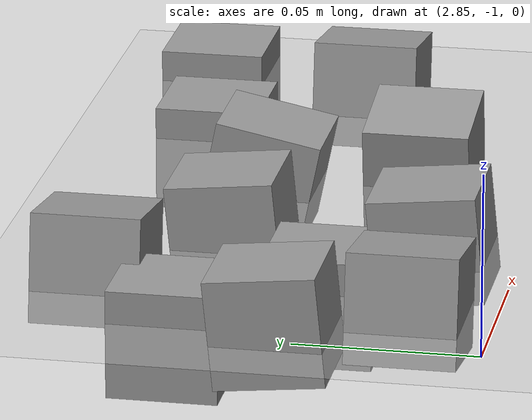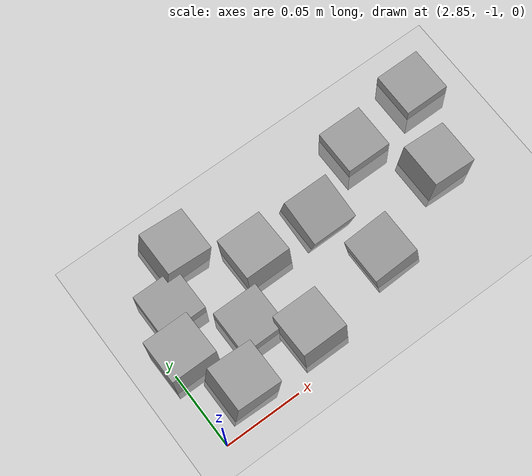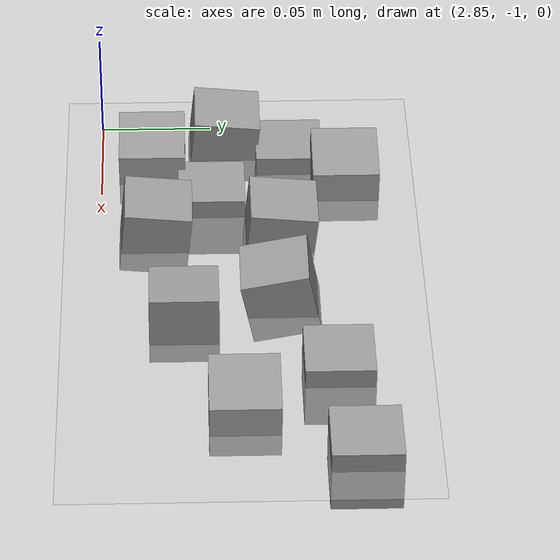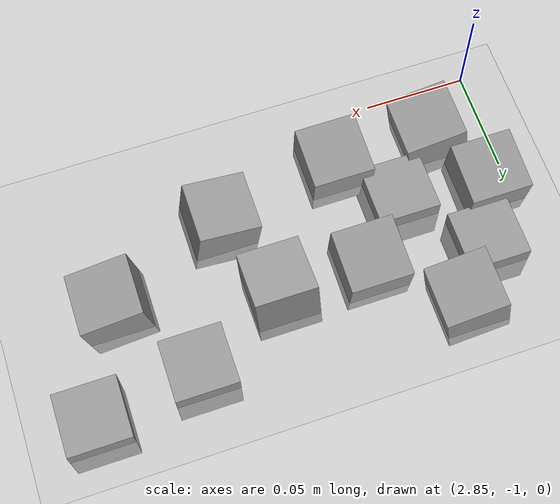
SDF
<sdf version="1.7">
 <world name="default">
  <model name="ground_plane">
   <static>1</static>
   <link name="link">
    <collision name="collision">
     <geometry><plane><normal>0 0 1</normal><size>100 100</size></plane></geometry>
     <surface><friction><ode><mu>100</mu><mu2>50</mu2></ode></friction></surface>
    </collision>
    <visual name="visual">
     <cast_shadows>0</cast_shadows>
     <geometry><plane><normal>0 0 1</normal><size>100 100</size></plane></geometry>
     <material>
      <script><uri>file://media/materials/scripts/gazebo.material</uri><name>Gazebo/Grey</name></script>
     </material>
    </visual>
   </link>
  </model>
  <model name="stone_road_12">
   <link name="link_0_clone_2_clone_0">
    <inertial>
     <mass>1</mass>
     <inertia>
      <ixx>0.166667</ixx>
      <ixy>0</ixy>
      <ixz>0</ixz>
      <iyy>0.166667</iyy>
      <iyz>0</iyz>
      <izz>0.166667</izz>
     </inertia>
    </inertial>
    <pose>0.026852 -0.0813 0.003778 0 0.15 0</pose>
    <kinematic>1</kinematic>
    <visual name="visual">
     <geometry><box><size>0.03 0.03 0.03</size></box></geometry>
     <material>
      <lighting>1</lighting>
      <script><uri>file://media/materials/scripts/gazebo.material</uri><name>Gazebo/Grey</name></script>
      <shader type="pixel"><normal_map>__default__</normal_map></shader>
      <ambient>0.3 0.3 0.3 1</ambient>
      <diffuse>0.7 0.7 0.7 1</diffuse>
      <specular>0.01 0.01 0.01 1</specular>
      <emissive>0 0 0 1</emissive>
     </material>
    </visual>
    <collision name="collision">
     <geometry><box><size>0.03 0.03 0.03</size></box></geometry>
     <surface>
      <friction>
       <ode><mu>1</mu><mu2>1</mu2><fdir1>0 0 0</fdir1><slip1>0</slip1><slip2>0</slip2></ode>
       <torsional>
        <coefficient>1</coefficient>
        <patch_radius>0</patch_radius>
        <surface_radius>0</surface_radius>
        <use_patch_radius>1</use_patch_radius>
        <ode><slip>0</slip></ode>
       </torsional>
      </friction>
      <bounce><restitution_coefficient>0</restitution_coefficient><threshold>1e+06</threshold></bounce>
      <contact>
       <collide_without_contact>0</collide_without_contact>
       <collide_without_contact_bitmask>1</collide_without_contact_bitmask>
       <collide_bitmask>1</collide_bitmask>
       <ode>
        <soft_cfm>0</soft_cfm>
        <soft_erp>0.2</soft_erp>
        <kp>1e+13</kp>
        <kd>1</kd>
        <max_vel>0.01</max_vel>
        <min_depth>0</min_depth>
       </ode>
       <bullet>
        <split_impulse>1</split_impulse>
        <split_impulse_penetration_threshold>-0.01</split_impulse_penetration_threshold>
        <soft_cfm>0</soft_cfm>
        <soft_erp>0.2</soft_erp>
        <kp>1e+13</kp>
        <kd>1</kd>
       </bullet>
      </contact>
     </surface>
    </collision>
   </link>
   <link name="link_0_clone_2_clone_1">
    <inertial>
     <mass>1</mass>
     <inertia>
      <ixx>0.166667</ixx>
      <ixy>0</ixy>
      <ixz>0</ixz>
      <iyy>0.166667</iyy>
      <iyz>0</iyz>
      <izz>0.166667</izz>
     </inertia>
    </inertial>
    <pose>0.041447 0.006316 0.003778 0 0.15 0</pose>
    <kinematic>1</kinematic>
    <visual name="visual">
     <geometry><box><size>0.03 0.03 0.03</size></box></geometry>
     <material>
      <lighting>1</lighting>
      <script><uri>file://media/materials/scripts/gazebo.material</uri><name>Gazebo/Grey</name></script>
      <shader type="pixel"><normal_map>__default__</normal_map></shader>
      <ambient>0.3 0.3 0.3 1</ambient>
      <diffuse>0.7 0.7 0.7 1</diffuse>
      <specular>0.01 0.01 0.01 1</specular>
      <emissive>0 0 0 1</emissive>
     </material>
    </visual>
    <collision name="collision">
     <geometry><box><size>0.03 0.03 0.03</size></box></geometry>
     <surface>
      <friction>
       <ode><mu>1</mu><mu2>1</mu2><fdir1>0 0 0</fdir1><slip1>0</slip1><slip2>0</slip2></ode>
       <torsional>
        <coefficient>1</coefficient>
        <patch_radius>0</patch_radius>
        <surface_radius>0</surface_radius>
        <use_patch_radius>1</use_patch_radius>
        <ode><slip>0</slip></ode>
       </torsional>
      </friction>
      <bounce><restitution_coefficient>0</restitution_coefficient><threshold>1e+06</threshold></bounce>
      <contact>
       <collide_without_contact>0</collide_without_contact>
       <collide_without_contact_bitmask>1</collide_without_contact_bitmask>
       <collide_bitmask>1</collide_bitmask>
       <ode>
        <soft_cfm>0</soft_cfm>
        <soft_erp>0.2</soft_erp>
        <kp>1e+13</kp>
        <kd>1</kd>
        <max_vel>0.01</max_vel>
        <min_depth>0</min_depth>
       </ode>
       <bullet>
        <split_impulse>1</split_impulse>
        <split_impulse_penetration_threshold>-0.01</split_impulse_penetration_threshold>
        <soft_cfm>0</soft_cfm>
        <soft_erp>0.2</soft_erp>
        <kp>1e+13</kp>
        <kd>1</kd>
       </bullet>
      </contact>
     </surface>
    </collision>
   </link>
   <link name="link_0_clone_2_clone_2_clone_13_clone_clone_16_clone_13">
    <inertial>
     <mass>1</mass>
     <inertia>
      <ixx>0.166667</ixx>
      <ixy>0</ixy>
      <ixz>0</ixz>
      <iyy>0.166667</iyy>
      <iyz>0</iyz>
      <izz>0.166667</izz>
     </inertia>
    </inertial>
    <pose>0.168013 -0.00203 -0.006222 0 -0 0</pose>
    <kinematic>1</kinematic>
    <visual name="visual">
     <geometry><box><size>0.03 0.03 0.03</size></box></geometry>
     <material>
      <lighting>1</lighting>
      <script><uri>file://media/materials/scripts/gazebo.material</uri><name>Gazebo/Grey</name></script>
      <shader type="pixel"><normal_map>__default__</normal_map></shader>
      <ambient>0.3 0.3 0.3 1</ambient>
      <diffuse>0.7 0.7 0.7 1</diffuse>
      <specular>0.01 0.01 0.01 1</specular>
      <emissive>0 0 0 1</emissive>
     </material>
    </visual>
    <collision name="collision">
     <geometry><box><size>0.03 0.03 0.03</size></box></geometry>
     <surface>
      <friction>
       <ode><mu>1</mu><mu2>1</mu2><fdir1>0 0 0</fdir1><slip1>0</slip1><slip2>0</slip2></ode>
       <torsional>
        <coefficient>1</coefficient>
        <patch_radius>0</patch_radius>
        <surface_radius>0</surface_radius>
        <use_patch_radius>1</use_patch_radius>
        <ode><slip>0</slip></ode>
       </torsional>
      </friction>
      <bounce><restitution_coefficient>0</restitution_coefficient><threshold>1e+06</threshold></bounce>
      <contact>
       <collide_without_contact>0</collide_without_contact>
       <collide_without_contact_bitmask>1</collide_without_contact_bitmask>
       <collide_bitmask>1</collide_bitmask>
       <ode>
        <soft_cfm>0</soft_cfm>
        <soft_erp>0.2</soft_erp>
        <kp>1e+13</kp>
        <kd>1</kd>
        <max_vel>0.01</max_vel>
        <min_depth>0</min_depth>
       </ode>
       <bullet>
        <split_impulse>1</split_impulse>
        <split_impulse_penetration_threshold>-0.01</split_impulse_penetration_threshold>
        <soft_cfm>0</soft_cfm>
        <soft_erp>0.2</soft_erp>
        <kp>1e+13</kp>
        <kd>1</kd>
       </bullet>
      </contact>
     </surface>
    </collision>
   </link>
   <link name="link_0_clone_2_clone_2_clone_13_clone_clone_16_clone_14">
    <inertial>
     <mass>1</mass>
     <inertia>
      <ixx>0.166667</ixx>
      <ixy>0</ixy>
      <ixz>0</ixz>
      <iyy>0.166667</iyy>
      <iyz>0</iyz>
      <izz>0.166667</izz>
     </inertia>
    </inertial>
    <pose>0.051911 -0.054424 -0.006222 0 -0 0</pose>
    <kinematic>1</kinematic>
    <visual name="visual">
     <geometry><box><size>0.03 0.03 0.03</size></box></geometry>
     <material>
      <lighting>1</lighting>
      <script><uri>file://media/materials/scripts/gazebo.material</uri><name>Gazebo/Grey</name></script>
      <shader type="pixel"><normal_map>__default__</normal_map></shader>
      <ambient>0.3 0.3 0.3 1</ambient>
      <diffuse>0.7 0.7 0.7 1</diffuse>
      <specular>0.01 0.01 0.01 1</specular>
      <emissive>0 0 0 1</emissive>
     </material>
    </visual>
    <collision name="collision">
     <geometry><box><size>0.03 0.03 0.03</size></box></geometry>
     <surface>
      <friction>
       <ode><mu>1</mu><mu2>1</mu2><fdir1>0 0 0</fdir1><slip1>0</slip1><slip2>0</slip2></ode>
       <torsional>
        <coefficient>1</coefficient>
        <patch_radius>0</patch_radius>
        <surface_radius>0</surface_radius>
        <use_patch_radius>1</use_patch_radius>
        <ode><slip>0</slip></ode>
       </torsional>
      </friction>
      <bounce><restitution_coefficient>0</restitution_coefficient><threshold>1e+06</threshold></bounce>
      <contact>
       <collide_without_contact>0</collide_without_contact>
       <collide_without_contact_bitmask>1</collide_without_contact_bitmask>
       <collide_bitmask>1</collide_bitmask>
       <ode>
        <soft_cfm>0</soft_cfm>
        <soft_erp>0.2</soft_erp>
        <kp>1e+13</kp>
        <kd>1</kd>
        <max_vel>0.01</max_vel>
        <min_depth>0</min_depth>
       </ode>
       <bullet>
        <split_impulse>1</split_impulse>
        <split_impulse_penetration_threshold>-0.01</split_impulse_penetration_threshold>
        <soft_cfm>0</soft_cfm>
        <soft_erp>0.2</soft_erp>
        <kp>1e+13</kp>
        <kd>1</kd>
       </bullet>
      </contact>
     </surface>
    </collision>
   </link>
   <link name="link_0_clone_2_clone_2_clone_13_clone_clone_16_clone_19">
    <inertial>
     <mass>1</mass>
     <inertia>
      <ixx>0.166667</ixx>
      <ixy>0</ixy>
      <ixz>0</ixz>
      <iyy>0.166667</iyy>
      <iyz>0</iyz>
      <izz>0.166667</izz>
     </inertia>
    </inertial>
    <pose>0.219442 0.006622 -0.006222 0 -0 0</pose>
    <kinematic>1</kinematic>
    <visual name="visual">
     <geometry><box><size>0.03 0.03 0.03</size></box></geometry>
     <material>
      <lighting>1</lighting>
      <script><uri>file://media/materials/scripts/gazebo.material</uri><name>Gazebo/Grey</name></script>
      <shader type="pixel"><normal_map>__default__</normal_map></shader>
      <ambient>0.3 0.3 0.3 1</ambient>
      <diffuse>0.7 0.7 0.7 1</diffuse>
      <specular>0.01 0.01 0.01 1</specular>
      <emissive>0 0 0 1</emissive>
     </material>
    </visual>
    <collision name="collision">
     <geometry><box><size>0.03 0.03 0.03</size></box></geometry>
     <surface>
      <friction>
       <ode><mu>1</mu><mu2>1</mu2><fdir1>0 0 0</fdir1><slip1>0</slip1><slip2>0</slip2></ode>
       <torsional>
        <coefficient>1</coefficient>
        <patch_radius>0</patch_radius>
        <surface_radius>0</surface_radius>
        <use_patch_radius>1</use_patch_radius>
        <ode><slip>0</slip></ode>
       </torsional>
      </friction>
      <bounce><restitution_coefficient>0</restitution_coefficient><threshold>1e+06</threshold></bounce>
      <contact>
       <collide_without_contact>0</collide_without_contact>
       <collide_without_contact_bitmask>1</collide_without_contact_bitmask>
       <collide_bitmask>1</collide_bitmask>
       <ode>
        <soft_cfm>0</soft_cfm>
        <soft_erp>0.2</soft_erp>
        <kp>1e+13</kp>
        <kd>1</kd>
        <max_vel>0.01</max_vel>
        <min_depth>0</min_depth>
       </ode>
       <bullet>
        <split_impulse>1</split_impulse>
        <split_impulse_penetration_threshold>-0.01</split_impulse_penetration_threshold>
        <soft_cfm>0</soft_cfm>
        <soft_erp>0.2</soft_erp>
        <kp>1e+13</kp>
        <kd>1</kd>
       </bullet>
      </contact>
     </surface>
    </collision>
   </link>
   <link name="link_0_clone_2_clone_2_clone_13_clone_clone_16_clone_6">
    <inertial>
     <mass>1</mass>
     <inertia>
      <ixx>0.166667</ixx>
      <ixy>0</ixy>
      <ixz>0</ixz>
      <iyy>0.166667</iyy>
      <iyz>0</iyz>
      <izz>0.166667</izz>
     </inertia>
    </inertial>
    <pose>0.020774 -0.018727 -0.006222 0 -0 0</pose>
    <kinematic>1</kinematic>
    <visual name="visual">
     <geometry><box><size>0.03 0.03 0.03</size></box></geometry>
     <material>
      <lighting>1</lighting>
      <script><uri>file://media/materials/scripts/gazebo.material</uri><name>Gazebo/Grey</name></script>
      <shader type="pixel"><normal_map>__default__</normal_map></shader>
      <ambient>0.3 0.3 0.3 1</ambient>
      <diffuse>0.7 0.7 0.7 1</diffuse>
      <specular>0.01 0.01 0.01 1</specular>
      <emissive>0 0 0 1</emissive>
     </material>
    </visual>
    <collision name="collision">
     <geometry><box><size>0.03 0.03 0.03</size></box></geometry>
     <surface>
      <friction>
       <ode><mu>1</mu><mu2>1</mu2><fdir1>0 0 0</fdir1><slip1>0</slip1><slip2>0</slip2></ode>
       <torsional>
        <coefficient>1</coefficient>
        <patch_radius>0</patch_radius>
        <surface_radius>0</surface_radius>
        <use_patch_radius>1</use_patch_radius>
        <ode><slip>0</slip></ode>
       </torsional>
      </friction>
      <bounce><restitution_coefficient>0</restitution_coefficient><threshold>1e+06</threshold></bounce>
      <contact>
       <collide_without_contact>0</collide_without_contact>
       <collide_without_contact_bitmask>1</collide_without_contact_bitmask>
       <collide_bitmask>1</collide_bitmask>
       <ode>
        <soft_cfm>0</soft_cfm>
        <soft_erp>0.2</soft_erp>
        <kp>1e+13</kp>
        <kd>1</kd>
        <max_vel>0.01</max_vel>
        <min_depth>0</min_depth>
       </ode>
       <bullet>
        <split_impulse>1</split_impulse>
        <split_impulse_penetration_threshold>-0.01</split_impulse_penetration_threshold>
        <soft_cfm>0</soft_cfm>
        <soft_erp>0.2</soft_erp>
        <kp>1e+13</kp>
        <kd>1</kd>
       </bullet>
      </contact>
     </surface>
    </collision>
   </link>
   <link name="link_0_clone_2_clone_2_clone_13_clone_clone_4">
    <inertial>
     <mass>1</mass>
     <inertia>
      <ixx>0.166667</ixx>
      <ixy>0</ixy>
      <ixz>0</ixz>
      <iyy>0.166667</iyy>
      <iyz>0</iyz>
      <izz>0.166667</izz>
     </inertia>
    </inertial>
    <pose>0.078198 -0.024053 0.003778 -0.1 0 0</pose>
    <kinematic>1</kinematic>
    <visual name="visual">
     <geometry><box><size>0.03 0.03 0.03</size></box></geometry>
     <material>
      <lighting>1</lighting>
      <script><uri>file://media/materials/scripts/gazebo.material</uri><name>Gazebo/Grey</name></script>
      <shader type="pixel"><normal_map>__default__</normal_map></shader>
      <ambient>0.3 0.3 0.3 1</ambient>
      <diffuse>0.7 0.7 0.7 1</diffuse>
      <specular>0.01 0.01 0.01 1</specular>
      <emissive>0 0 0 1</emissive>
     </material>
    </visual>
    <collision name="collision">
     <geometry><box><size>0.03 0.03 0.03</size></box></geometry>
     <surface>
      <friction>
       <ode><mu>1</mu><mu2>1</mu2><fdir1>0 0 0</fdir1><slip1>0</slip1><slip2>0</slip2></ode>
       <torsional>
        <coefficient>1</coefficient>
        <patch_radius>0</patch_radius>
        <surface_radius>0</surface_radius>
        <use_patch_radius>1</use_patch_radius>
        <ode><slip>0</slip></ode>
       </torsional>
      </friction>
      <bounce><restitution_coefficient>0</restitution_coefficient><threshold>1e+06</threshold></bounce>
      <contact>
       <collide_without_contact>0</collide_without_contact>
       <collide_without_contact_bitmask>1</collide_without_contact_bitmask>
       <collide_bitmask>1</collide_bitmask>
       <ode>
        <soft_cfm>0</soft_cfm>
        <soft_erp>0.2</soft_erp>
        <kp>1e+13</kp>
        <kd>1</kd>
        <max_vel>0.01</max_vel>
        <min_depth>0</min_depth>
       </ode>
       <bullet>
        <split_impulse>1</split_impulse>
        <split_impulse_penetration_threshold>-0.01</split_impulse_penetration_threshold>
        <soft_cfm>0</soft_cfm>
        <soft_erp>0.2</soft_erp>
        <kp>1e+13</kp>
        <kd>1</kd>
       </bullet>
      </contact>
     </surface>
    </collision>
   </link>
   <link name="link_0_clone_2_clone_2_clone_13_clone_clone_5">
    <inertial>
     <mass>1</mass>
     <inertia>
      <ixx>0.166667</ixx>
      <ixy>0</ixy>
      <ixz>0</ixz>
      <iyy>0.166667</iyy>
      <iyz>0</iyz>
      <izz>0.166667</izz>
     </inertia>
    </inertial>
    <pose>0.076743 -0.079785 0.003778 -0.1 0 0</pose>
    <kinematic>1</kinematic>
    <visual name="visual">
     <geometry><box><size>0.03 0.03 0.03</size></box></geometry>
     <material>
      <lighting>1</lighting>
      <script><uri>file://media/materials/scripts/gazebo.material</uri><name>Gazebo/Grey</name></script>
      <shader type="pixel"><normal_map>__default__</normal_map></shader>
      <ambient>0.3 0.3 0.3 1</ambient>
      <diffuse>0.7 0.7 0.7 1</diffuse>
      <specular>0.01 0.01 0.01 1</specular>
      <emissive>0 0 0 1</emissive>
     </material>
    </visual>
    <collision name="collision">
     <geometry><box><size>0.03 0.03 0.03</size></box></geometry>
     <surface>
      <friction>
       <ode><mu>1</mu><mu2>1</mu2><fdir1>0 0 0</fdir1><slip1>0</slip1><slip2>0</slip2></ode>
       <torsional>
        <coefficient>1</coefficient>
        <patch_radius>0</patch_radius>
        <surface_radius>0</surface_radius>
        <use_patch_radius>1</use_patch_radius>
        <ode><slip>0</slip></ode>
       </torsional>
      </friction>
      <bounce><restitution_coefficient>0</restitution_coefficient><threshold>1e+06</threshold></bounce>
      <contact>
       <collide_without_contact>0</collide_without_contact>
       <collide_without_contact_bitmask>1</collide_without_contact_bitmask>
       <collide_bitmask>1</collide_bitmask>
       <ode>
        <soft_cfm>0</soft_cfm>
        <soft_erp>0.2</soft_erp>
        <kp>1e+13</kp>
        <kd>1</kd>
        <max_vel>0.01</max_vel>
        <min_depth>0</min_depth>
       </ode>
       <bullet>
        <split_impulse>1</split_impulse>
        <split_impulse_penetration_threshold>-0.01</split_impulse_penetration_threshold>
        <soft_cfm>0</soft_cfm>
        <soft_erp>0.2</soft_erp>
        <kp>1e+13</kp>
        <kd>1</kd>
       </bullet>
      </contact>
     </surface>
    </collision>
   </link>
   <link name="link_0_clone_2_clone_2_clone_13_clone_clone_6">
    <inertial>
     <mass>1</mass>
     <inertia>
      <ixx>0.166667</ixx>
      <ixy>0</ixy>
      <ixz>0</ixz>
      <iyy>0.166667</iyy>
      <iyz>0</iyz>
      <izz>0.166667</izz>
     </inertia>
    </inertial>
    <pose>0.009445 -0.048118 0.003778 -0.1 0 0</pose>
    <kinematic>1</kinematic>
    <visual name="visual">
     <geometry><box><size>0.03 0.03 0.03</size></box></geometry>
     <material>
      <lighting>1</lighting>
      <script><uri>file://media/materials/scripts/gazebo.material</uri><name>Gazebo/Grey</name></script>
      <shader type="pixel"><normal_map>__default__</normal_map></shader>
      <ambient>0.3 0.3 0.3 1</ambient>
      <diffuse>0.7 0.7 0.7 1</diffuse>
      <specular>0.01 0.01 0.01 1</specular>
      <emissive>0 0 0 1</emissive>
     </material>
    </visual>
    <collision name="collision">
     <geometry><box><size>0.03 0.03 0.03</size></box></geometry>
     <surface>
      <friction>
       <ode><mu>1</mu><mu2>1</mu2><fdir1>0 0 0</fdir1><slip1>0</slip1><slip2>0</slip2></ode>
       <torsional>
        <coefficient>1</coefficient>
        <patch_radius>0</patch_radius>
        <surface_radius>0</surface_radius>
        <use_patch_radius>1</use_patch_radius>
        <ode><slip>0</slip></ode>
       </torsional>
      </friction>
      <bounce><restitution_coefficient>0</restitution_coefficient><threshold>1e+06</threshold></bounce>
      <contact>
       <collide_without_contact>0</collide_without_contact>
       <collide_without_contact_bitmask>1</collide_without_contact_bitmask>
       <collide_bitmask>1</collide_bitmask>
       <ode>
        <soft_cfm>0</soft_cfm>
        <soft_erp>0.2</soft_erp>
        <kp>1e+13</kp>
        <kd>1</kd>
        <max_vel>0.01</max_vel>
        <min_depth>0</min_depth>
       </ode>
       <bullet>
        <split_impulse>1</split_impulse>
        <split_impulse_penetration_threshold>-0.01</split_impulse_penetration_threshold>
        <soft_cfm>0</soft_cfm>
        <soft_erp>0.2</soft_erp>
        <kp>1e+13</kp>
        <kd>1</kd>
       </bullet>
      </contact>
     </surface>
    </collision>
   </link>
   <link name="link_0_clone_2_clone_2_clone_5">
    <inertial>
     <mass>1</mass>
     <inertia>
      <ixx>0.166667</ixx>
      <ixy>0</ixy>
      <ixz>0</ixz>
      <iyy>0.166667</iyy>
      <iyz>0</iyz>
      <izz>0.166667</izz>
     </inertia>
    </inertial>
    <pose>0.13842 -0.067468 0.003778 0 -0.15 0</pose>
    <kinematic>1</kinematic>
    <visual name="visual">
     <geometry><box><size>0.03 0.03 0.03</size></box></geometry>
     <material>
      <lighting>1</lighting>
      <script><uri>file://media/materials/scripts/gazebo.material</uri><name>Gazebo/Grey</name></script>
      <shader type="pixel"><normal_map>__default__</normal_map></shader>
      <ambient>0.3 0.3 0.3 1</ambient>
      <diffuse>0.7 0.7 0.7 1</diffuse>
      <specular>0.01 0.01 0.01 1</specular>
      <emissive>0 0 0 1</emissive>
     </material>
    </visual>
    <collision name="collision">
     <geometry><box><size>0.03 0.03 0.03</size></box></geometry>
     <surface>
      <friction>
       <ode><mu>1</mu><mu2>1</mu2><fdir1>0 0 0</fdir1><slip1>0</slip1><slip2>0</slip2></ode>
       <torsional>
        <coefficient>1</coefficient>
        <patch_radius>0</patch_radius>
        <surface_radius>0</surface_radius>
        <use_patch_radius>1</use_patch_radius>
        <ode><slip>0</slip></ode>
       </torsional>
      </friction>
      <bounce><restitution_coefficient>0</restitution_coefficient><threshold>1e+06</threshold></bounce>
      <contact>
       <collide_without_contact>0</collide_without_contact>
       <collide_without_contact_bitmask>1</collide_without_contact_bitmask>
       <collide_bitmask>1</collide_bitmask>
       <ode>
        <soft_cfm>0</soft_cfm>
        <soft_erp>0.2</soft_erp>
        <kp>1e+13</kp>
        <kd>1</kd>
        <max_vel>0.01</max_vel>
        <min_depth>0</min_depth>
       </ode>
       <bullet>
        <split_impulse>1</split_impulse>
        <split_impulse_penetration_threshold>-0.01</split_impulse_penetration_threshold>
        <soft_cfm>0</soft_cfm>
        <soft_erp>0.2</soft_erp>
        <kp>1e+13</kp>
        <kd>1</kd>
       </bullet>
      </contact>
     </surface>
    </collision>
   </link>
   <link name="link_0_clone_2_clone_8">
    <inertial>
     <mass>1</mass>
     <inertia>
      <ixx>0.166667</ixx>
      <ixy>0</ixy>
      <ixz>0</ixz>
      <iyy>0.166667</iyy>
      <iyz>0</iyz>
      <izz>0.166667</izz>
     </inertia>
    </inertial>
    <pose>0.197388 -0.042712 0.003778 0 0.15 0</pose>
    <kinematic>1</kinematic>
    <visual name="visual">
     <geometry><box><size>0.03 0.03 0.03</size></box></geometry>
     <material>
      <lighting>1</lighting>
      <script><uri>file://media/materials/scripts/gazebo.material</uri><name>Gazebo/Grey</name></script>
      <shader type="pixel"><normal_map>__default__</normal_map></shader>
      <ambient>0.3 0.3 0.3 1</ambient>
      <diffuse>0.7 0.7 0.7 1</diffuse>
      <specular>0.01 0.01 0.01 1</specular>
      <emissive>0 0 0 1</emissive>
     </material>
    </visual>
    <collision name="collision">
     <geometry><box><size>0.03 0.03 0.03</size></box></geometry>
     <surface>
      <friction>
       <ode><mu>1</mu><mu2>1</mu2><fdir1>0 0 0</fdir1><slip1>0</slip1><slip2>0</slip2></ode>
       <torsional>
        <coefficient>1</coefficient>
        <patch_radius>0</patch_radius>
        <surface_radius>0</surface_radius>
        <use_patch_radius>1</use_patch_radius>
        <ode><slip>0</slip></ode>
       </torsional>
      </friction>
      <bounce><restitution_coefficient>0</restitution_coefficient><threshold>1e+06</threshold></bounce>
      <contact>
       <collide_without_contact>0</collide_without_contact>
       <collide_without_contact_bitmask>1</collide_without_contact_bitmask>
       <collide_bitmask>1</collide_bitmask>
       <ode>
        <soft_cfm>0</soft_cfm>
        <soft_erp>0.2</soft_erp>
        <kp>1e+13</kp>
        <kd>1</kd>
        <max_vel>0.01</max_vel>
        <min_depth>0</min_depth>
       </ode>
       <bullet>
        <split_impulse>1</split_impulse>
        <split_impulse_penetration_threshold>-0.01</split_impulse_penetration_threshold>
        <soft_cfm>0</soft_cfm>
        <soft_erp>0.2</soft_erp>
        <kp>1e+13</kp>
        <kd>1</kd>
       </bullet>
      </contact>
     </surface>
    </collision>
   </link>
   <link name="link_0_clone_9">
    <inertial>
     <mass>1</mass>
     <inertia>
      <ixx>0.166667</ixx>
      <ixy>0</ixy>
      <ixz>0</ixz>
      <iyy>0.166667</iyy>
      <iyz>0</iyz>
      <izz>0.166667</izz>
     </inertia>
    </inertial>
    <pose>0.122173 -0.025452 0.003778 0.2 -0 0</pose>
    <kinematic>1</kinematic>
    <visual name="visual">
     <geometry><box><size>0.03 0.03 0.03</size></box></geometry>
     <material>
      <lighting>1</lighting>
      <script><uri>file://media/materials/scripts/gazebo.material</uri><name>Gazebo/Grey</name></script>
      <shader type="pixel"><normal_map>__default__</normal_map></shader>
      <ambient>0.3 0.3 0.3 1</ambient>
      <diffuse>0.7 0.7 0.7 1</diffuse>
      <specular>0.01 0.01 0.01 1</specular>
      <emissive>0 0 0 1</emissive>
     </material>
    </visual>
    <collision name="collision">
     <geometry><box><size>0.03 0.03 0.03</size></box></geometry>
     <surface>
      <friction>
       <ode><mu>1</mu><mu2>1</mu2><fdir1>0 0 0</fdir1><slip1>0</slip1><slip2>0</slip2></ode>
       <torsional>
        <coefficient>1</coefficient>
        <patch_radius>0</patch_radius>
        <surface_radius>0</surface_radius>
        <use_patch_radius>1</use_patch_radius>
        <ode><slip>0</slip></ode>
       </torsional>
      </friction>
      <bounce><restitution_coefficient>0</restitution_coefficient><threshold>1e+06</threshold></bounce>
      <contact>
       <collide_without_contact>0</collide_without_contact>
       <collide_without_contact_bitmask>1</collide_without_contact_bitmask>
       <collide_bitmask>1</collide_bitmask>
       <ode>
        <soft_cfm>0</soft_cfm>
        <soft_erp>0.2</soft_erp>
        <kp>1e+13</kp>
        <kd>1</kd>
        <max_vel>0.01</max_vel>
        <min_depth>0</min_depth>
       </ode>
       <bullet>
        <split_impulse>1</split_impulse>
        <split_impulse_penetration_threshold>-0.01</split_impulse_penetration_threshold>
        <soft_cfm>0</soft_cfm>
        <soft_erp>0.2</soft_erp>
        <kp>1e+13</kp>
        <kd>1</kd>
       </bullet>
      </contact>
     </surface>
    </collision>
   </link>
   <static>0</static>
   <pose>2.85052 -0.895534 -0 0 -0 0</pose>
  </model>
 </world>
</sdf>
